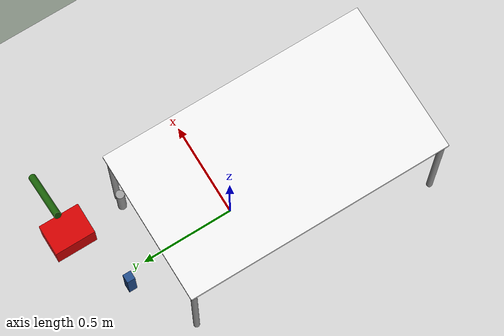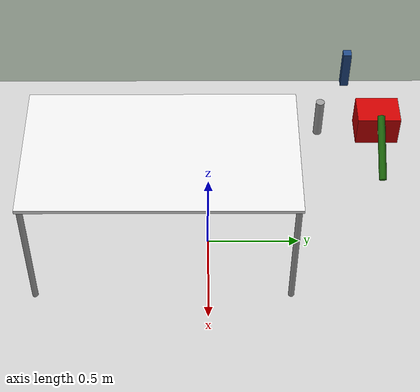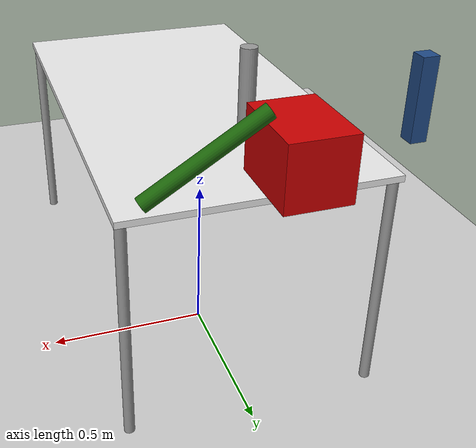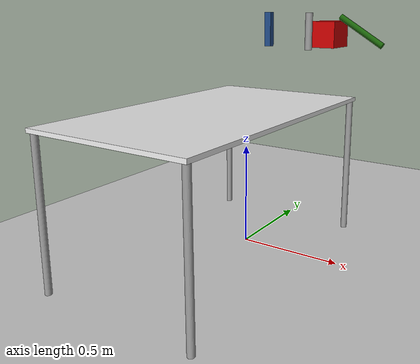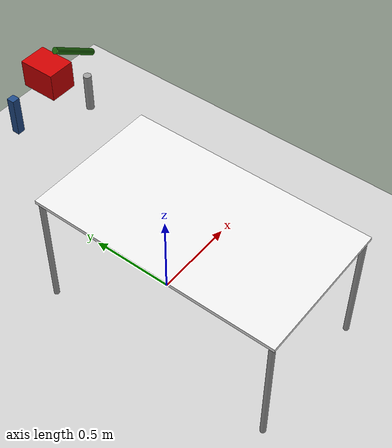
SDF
<sdf version="1.7">
 <world name="default">
  <plugin name="ros_link_attacher_plugin" filename="libgazebo_ros_link_attacher.so"/>
  <light name="sun" type="directional">
   <pose>0 0 10 0 -0 0</pose>
   <diffuse>0.8 0.8 0.8 1</diffuse>
   <specular>0.2 0.2 0.2 1</specular>
   <attenuation>
    <range>1000</range>
    <constant>0.9</constant>
    <linear>0.01</linear>
    <quadratic>0.001</quadratic>
   </attenuation>
   <direction>-0.5 0.1 -0.9</direction>
   <spot><inner_angle>0</inner_angle><outer_angle>0</outer_angle><falloff>0</falloff></spot>
  </light>
  <gravity>0 0 -9.8</gravity>
  <magnetic_field>6e-06 2.3e-05 -4.2e-05</magnetic_field>
  <atmosphere type="adiabatic"/>
  <physics type="ode">
   <max_step_size>0.001</max_step_size>
   <real_time_factor>1</real_time_factor>
   <real_time_update_rate>1000</real_time_update_rate>
  </physics>
  <scene><ambient>0.4 0.4 0.4 1</ambient><background>0.7 0.7 0.7 1</background><shadows>1</shadows></scene>
  <spherical_coordinates>
   <surface_model>EARTH_WGS84</surface_model>
   <latitude_deg>0</latitude_deg>
   <longitude_deg>0</longitude_deg>
   <elevation>0</elevation>
   <heading_deg>0</heading_deg>
  </spherical_coordinates>
  <model name="ground_plane">
   <static>1</static>
   <link name="link">
    <collision name="collision">
     <geometry><plane><normal>0 0 1</normal><size>100 100</size></plane></geometry>
     <surface><friction><ode><mu>100</mu><mu2>50</mu2></ode></friction></surface>
    </collision>
    <visual name="visual">
     <cast_shadows>0</cast_shadows>
     <geometry><plane><normal>0 0 1</normal><size>100 100</size></plane></geometry>
     <material>
      <script><uri>file://media/materials/scripts/gazebo.material</uri><name>Gazebo/Grey</name></script>
     </material>
    </visual>
   </link>
   <pose>-2.26503 -1.2302 0 0 -0 0</pose>
  </model>
  <model name="TableAgr">
   <link name="link2">
    <inertial>
     <inertia><ixx>0</ixx><ixy>0</ixy><ixz>0</ixz><iyy>0</iyy><iyz>0</iyz><izz>0</izz></inertia>
     <mass>0</mass>
    </inertial>
    <pose>-0.25 -0 0 0 -0 0</pose>
    <visual name="visual1">
     <pose>0 0 0.71 0 -0 0</pose>
     <geometry><box><size>1.40612 0.8 0.019708</size></box></geometry>
     <material>
      <script><uri>file://media/materials/scripts/gazebo.material</uri><name>Gazebo/White</name></script>
      <shader type="pixel"><normal_map>__default__</normal_map></shader>
      <ambient>0.9 0.9 0.9 1</ambient>
      <diffuse>1 1 1 1</diffuse>
      <specular>0.2 0.2 0.2 1</specular>
      <emissive>0 0 0 1</emissive>
     </material>
    </visual>
    <visual name="front_left_leg">
     <pose>0.68 0.38 0.35 0 -0 0</pose>
     <geometry><cylinder><radius>0.0158435</radius><length>0.7</length></cylinder></geometry>
     <material>
      <script><uri>file://media/materials/scripts/gazebo.material</uri><name>Gazebo/Grey</name></script>
      <shader type="pixel"><normal_map>__default__</normal_map></shader>
      <ambient>0.3 0.3 0.3 1</ambient>
      <diffuse>0.7 0.7 0.7 1</diffuse>
      <specular>0.01 0.01 0.01 1</specular>
      <emissive>0 0 0 1</emissive>
     </material>
    </visual>
    <visual name="back_right_leg">
     <pose>-0.68 -0.38 0.35 0 -0 0</pose>
     <geometry><cylinder><radius>0.0158435</radius><length>0.7</length></cylinder></geometry>
     <material>
      <script><uri>file://media/materials/scripts/gazebo.material</uri><name>Gazebo/Grey</name></script>
      <shader type="pixel"><normal_map>__default__</normal_map></shader>
      <ambient>0.3 0.3 0.3 1</ambient>
      <diffuse>0.7 0.7 0.7 1</diffuse>
      <specular>0.01 0.01 0.01 1</specular>
      <emissive>0 0 0 1</emissive>
     </material>
    </visual>
    <visual name="front_right_leg">
     <pose>0.68 -0.38 0.35 0 -0 0</pose>
     <geometry><cylinder><radius>0.0158435</radius><length>0.7</length></cylinder></geometry>
     <material>
      <script><uri>file://media/materials/scripts/gazebo.material</uri><name>Gazebo/Grey</name></script>
      <shader type="pixel"><normal_map>__default__</normal_map></shader>
      <ambient>0.3 0.3 0.3 1</ambient>
      <diffuse>0.7 0.7 0.7 1</diffuse>
      <specular>0.01 0.01 0.01 1</specular>
      <emissive>0 0 0 1</emissive>
     </material>
    </visual>
    <visual name="back_left_leg">
     <pose>-0.68 0.38 0.35 0 -0 0</pose>
     <geometry><cylinder><radius>0.0158435</radius><length>0.7</length></cylinder></geometry>
     <material>
      <script><uri>file://media/materials/scripts/gazebo.material</uri><name>Gazebo/Grey</name></script>
      <shader type="pixel"><normal_map>__default__</normal_map></shader>
      <ambient>0.3 0.3 0.3 1</ambient>
      <diffuse>0.7 0.7 0.7 1</diffuse>
      <specular>0.01 0.01 0.01 1</specular>
      <emissive>0 0 0 1</emissive>
     </material>
    </visual>
    <collision name="front_right_leg">
     <pose>0.68 -0.38 0.35 0 -0 0</pose>
     <geometry><cylinder><radius>0.015843</radius><length>0.7</length></cylinder></geometry>
     <surface>
      <friction>
       <ode><mu>1</mu><mu2>1</mu2><fdir1>0 0 0</fdir1><slip1>0</slip1><slip2>0</slip2></ode>
       <torsional>
        <coefficient>1</coefficient>
        <patch_radius>0</patch_radius>
        <surface_radius>0</surface_radius>
        <use_patch_radius>1</use_patch_radius>
        <ode><slip>0</slip></ode>
       </torsional>
      </friction>
      <bounce><restitution_coefficient>0</restitution_coefficient><threshold>1e+06</threshold></bounce>
      <contact>
       <collide_without_contact>0</collide_without_contact>
       <collide_without_contact_bitmask>1</collide_without_contact_bitmask>
       <collide_bitmask>1</collide_bitmask>
       <ode>
        <soft_cfm>0</soft_cfm>
        <soft_erp>0.2</soft_erp>
        <kp>1e+13</kp>
        <kd>1</kd>
        <max_vel>0.01</max_vel>
        <min_depth>0</min_depth>
       </ode>
       <bullet>
        <split_impulse>1</split_impulse>
        <split_impulse_penetration_threshold>-0.01</split_impulse_penetration_threshold>
        <soft_cfm>0</soft_cfm>
        <soft_erp>0.2</soft_erp>
        <kp>1e+13</kp>
        <kd>1</kd>
       </bullet>
      </contact>
     </surface>
    </collision>
    <collision name="surface">
     <pose>0 0 0.71 0 -0 0</pose>
     <geometry><box><size>1.40612 0.8 0.019708</size></box></geometry>
     <surface>
      <friction>
       <ode><mu>0.6</mu><mu2>0.6</mu2><fdir1>0 0 0</fdir1><slip1>0</slip1><slip2>0</slip2></ode>
       <torsional>
        <coefficient>1</coefficient>
        <patch_radius>0</patch_radius>
        <surface_radius>0</surface_radius>
        <use_patch_radius>1</use_patch_radius>
        <ode><slip>0</slip></ode>
       </torsional>
      </friction>
      <bounce><restitution_coefficient>0</restitution_coefficient><threshold>1e+06</threshold></bounce>
      <contact>
       <collide_without_contact>0</collide_without_contact>
       <collide_without_contact_bitmask>1</collide_without_contact_bitmask>
       <collide_bitmask>1</collide_bitmask>
       <ode>
        <soft_cfm>0</soft_cfm>
        <soft_erp>0.2</soft_erp>
        <kp>1e+13</kp>
        <kd>1</kd>
        <max_vel>0.01</max_vel>
        <min_depth>0</min_depth>
       </ode>
       <bullet>
        <split_impulse>1</split_impulse>
        <split_impulse_penetration_threshold>-0.01</split_impulse_penetration_threshold>
        <soft_cfm>0</soft_cfm>
        <soft_erp>0.2</soft_erp>
        <kp>1e+13</kp>
        <kd>1</kd>
       </bullet>
      </contact>
     </surface>
    </collision>
    <collision name="front_left_leg">
     <pose>0.68 0.38 0.35 0 -0 0</pose>
     <geometry><cylinder><radius>0.015843</radius><length>0.7</length></cylinder></geometry>
     <surface>
      <friction>
       <ode><mu>1</mu><mu2>1</mu2><fdir1>0 0 0</fdir1><slip1>0</slip1><slip2>0</slip2></ode>
       <torsional>
        <coefficient>1</coefficient>
        <patch_radius>0</patch_radius>
        <surface_radius>0</surface_radius>
        <use_patch_radius>1</use_patch_radius>
        <ode><slip>0</slip></ode>
       </torsional>
      </friction>
      <bounce><restitution_coefficient>0</restitution_coefficient><threshold>1e+06</threshold></bounce>
      <contact>
       <collide_without_contact>0</collide_without_contact>
       <collide_without_contact_bitmask>1</collide_without_contact_bitmask>
       <collide_bitmask>1</collide_bitmask>
       <ode>
        <soft_cfm>0</soft_cfm>
        <soft_erp>0.2</soft_erp>
        <kp>1e+13</kp>
        <kd>1</kd>
        <max_vel>0.01</max_vel>
        <min_depth>0</min_depth>
       </ode>
       <bullet>
        <split_impulse>1</split_impulse>
        <split_impulse_penetration_threshold>-0.01</split_impulse_penetration_threshold>
        <soft_cfm>0</soft_cfm>
        <soft_erp>0.2</soft_erp>
        <kp>1e+13</kp>
        <kd>1</kd>
       </bullet>
      </contact>
     </surface>
    </collision>
    <collision name="back_left_leg">
     <pose>-0.68 0.38 0.35 0 -0 0</pose>
     <geometry><cylinder><radius>0.015843</radius><length>0.7</length></cylinder></geometry>
     <surface>
      <friction>
       <ode><mu>1</mu><mu2>1</mu2><fdir1>0 0 0</fdir1><slip1>0</slip1><slip2>0</slip2></ode>
       <torsional>
        <coefficient>1</coefficient>
        <patch_radius>0</patch_radius>
        <surface_radius>0</surface_radius>
        <use_patch_radius>1</use_patch_radius>
        <ode><slip>0</slip></ode>
       </torsional>
      </friction>
      <bounce><restitution_coefficient>0</restitution_coefficient><threshold>1e+06</threshold></bounce>
      <contact>
       <collide_without_contact>0</collide_without_contact>
       <collide_without_contact_bitmask>1</collide_without_contact_bitmask>
       <collide_bitmask>1</collide_bitmask>
       <ode>
        <soft_cfm>0</soft_cfm>
        <soft_erp>0.2</soft_erp>
        <kp>1e+13</kp>
        <kd>1</kd>
        <max_vel>0.01</max_vel>
        <min_depth>0</min_depth>
       </ode>
       <bullet>
        <split_impulse>1</split_impulse>
        <split_impulse_penetration_threshold>-0.01</split_impulse_penetration_threshold>
        <soft_cfm>0</soft_cfm>
        <soft_erp>0.2</soft_erp>
        <kp>1e+13</kp>
        <kd>1</kd>
       </bullet>
      </contact>
     </surface>
    </collision>
    <collision name="back_right_leg">
     <pose>-0.68 -0.38 0.35 0 -0 0</pose>
     <geometry><cylinder><radius>0.015843</radius><length>0.7</length></cylinder></geometry>
     <surface>
      <friction>
       <ode><mu>1</mu><mu2>1</mu2><fdir1>0 0 0</fdir1><slip1>0</slip1><slip2>0</slip2></ode>
       <torsional>
        <coefficient>1</coefficient>
        <patch_radius>0</patch_radius>
        <surface_radius>0</surface_radius>
        <use_patch_radius>1</use_patch_radius>
        <ode><slip>0</slip></ode>
       </torsional>
      </friction>
      <bounce><restitution_coefficient>0</restitution_coefficient><threshold>1e+06</threshold></bounce>
      <contact>
       <collide_without_contact>0</collide_without_contact>
       <collide_without_contact_bitmask>1</collide_without_contact_bitmask>
       <collide_bitmask>1</collide_bitmask>
       <ode>
        <soft_cfm>0</soft_cfm>
        <soft_erp>0.2</soft_erp>
        <kp>1e+13</kp>
        <kd>1</kd>
        <max_vel>0.01</max_vel>
        <min_depth>0</min_depth>
       </ode>
       <bullet>
        <split_impulse>1</split_impulse>
        <split_impulse_penetration_threshold>-0.01</split_impulse_penetration_threshold>
        <soft_cfm>0</soft_cfm>
        <soft_erp>0.2</soft_erp>
        <kp>1e+13</kp>
        <kd>1</kd>
       </bullet>
      </contact>
     </surface>
    </collision>
   </link>
   <static>1</static>
   <pose>-0.022089 0.010177 0 0 -0 1.57</pose>
  </model>
  <model name="BoxAgrObs1">
   <link name="link_4">
    <inertial>
     <mass>0.00267937</mass>
     <inertia>
      <ixx>1.012e-05</ixx>
      <ixy>0</ixy>
      <ixz>0</ixz>
      <iyy>6.7e-06</iyy>
      <iyz>0</iyz>
      <izz>1.12e-05</izz>
     </inertia>
    </inertial>
    <visual name="visual">
     <geometry><box><size>0.15 0.2 0.15</size></box></geometry>
     <material>
      <lighting>1</lighting>
      <script><uri>file://media/materials/scripts/gazebo.material</uri><name>Gazebo/Grey</name></script>
      <shader type="pixel"><normal_map>__default__</normal_map></shader>
      <ambient>0.8 0 0 1</ambient>
      <diffuse>0.7 0.7 0.7 1</diffuse>
      <specular>0.01 0.01 0.01 1</specular>
      <emissive>0 0 0 1</emissive>
     </material>
    </visual>
    <collision name="collision">
     <geometry><box><size>0.15 0.2 0.15</size></box></geometry>
     <surface>
      <friction>
       <ode><mu>1</mu><mu2>1</mu2><fdir1>0 0 0</fdir1><slip1>0</slip1><slip2>0</slip2></ode>
       <torsional>
        <coefficient>1</coefficient>
        <patch_radius>0</patch_radius>
        <surface_radius>0</surface_radius>
        <use_patch_radius>1</use_patch_radius>
        <ode><slip>0</slip></ode>
       </torsional>
      </friction>
      <bounce><restitution_coefficient>0</restitution_coefficient><threshold>1e+06</threshold></bounce>
      <contact>
       <collide_without_contact>0</collide_without_contact>
       <collide_without_contact_bitmask>1</collide_without_contact_bitmask>
       <collide_bitmask>1</collide_bitmask>
       <ode>
        <soft_cfm>0</soft_cfm>
        <soft_erp>0.2</soft_erp>
        <kp>1e+13</kp>
        <kd>1</kd>
        <max_vel>0.01</max_vel>
        <min_depth>0</min_depth>
       </ode>
       <bullet>
        <split_impulse>1</split_impulse>
        <split_impulse_penetration_threshold>-0.01</split_impulse_penetration_threshold>
        <soft_cfm>0</soft_cfm>
        <soft_erp>0.2</soft_erp>
        <kp>1e+13</kp>
        <kd>1</kd>
       </bullet>
      </contact>
     </surface>
    </collision>
   </link>
   <static>0</static>
   <pose>0.069921 0.799992 1.023 2e-06 -0 0.000131</pose>
  </model>
  <model name="CylinderAgr2">
   <link name="link_5">
    <inertial>
     <mass>0.00037636</mass>
     <inertia><ixx>2.88e-06</ixx><ixy>0</ixy><ixz>0</ixz><iyy>2.88e-06</iyy><iyz>0</iyz><izz>6e-08</izz></inertia>
    </inertial>
    <pose>0 0 0 0 -1.01599 0</pose>
    <visual name="visual">
     <geometry><cylinder><radius>0.0177698</radius><length>0.301258</length></cylinder></geometry>
     <material>
      <lighting>1</lighting>
      <script><uri>file://media/materials/scripts/gazebo.material</uri><name>Gazebo/Grey</name></script>
      <shader type="pixel"><normal_map>__default__</normal_map></shader>
      <ambient>0.102 0.38 0.035 1</ambient>
      <diffuse>0.7 0.7 0.7 1</diffuse>
      <specular>0.01 0.01 0.01 1</specular>
      <emissive>0 0 0 1</emissive>
     </material>
    </visual>
    <collision name="collision">
     <geometry><cylinder><radius>0.01777</radius><length>0.301258</length></cylinder></geometry>
     <surface>
      <friction>
       <ode><mu>1</mu><mu2>1</mu2><fdir1>0 0 0</fdir1><slip1>0</slip1><slip2>0</slip2></ode>
       <torsional>
        <coefficient>1</coefficient>
        <patch_radius>0</patch_radius>
        <surface_radius>0</surface_radius>
        <use_patch_radius>1</use_patch_radius>
        <ode><slip>0</slip></ode>
       </torsional>
      </friction>
      <bounce><restitution_coefficient>0</restitution_coefficient><threshold>1e+06</threshold></bounce>
      <contact>
       <collide_without_contact>0</collide_without_contact>
       <collide_without_contact_bitmask>1</collide_without_contact_bitmask>
       <collide_bitmask>1</collide_bitmask>
       <ode>
        <soft_cfm>0</soft_cfm>
        <soft_erp>0.2</soft_erp>
        <kp>1e+13</kp>
        <kd>1</kd>
        <max_vel>0.01</max_vel>
        <min_depth>0</min_depth>
       </ode>
       <bullet>
        <split_impulse>1</split_impulse>
        <split_impulse_penetration_threshold>-0.01</split_impulse_penetration_threshold>
        <soft_cfm>0</soft_cfm>
        <soft_erp>0.2</soft_erp>
        <kp>1e+13</kp>
        <kd>1</kd>
       </bullet>
      </contact>
     </surface>
    </collision>
   </link>
   <static>0</static>
   <pose>0.266614 0.804093 1.0429 -0.054723 0.004703 0.033969</pose>
  </model>
  <model name="CylinderAgr1">
   <link name="link_1">
    <inertial>
     <mass>0.00188198</mass>
     <inertia>
      <ixx>0.00015705</ixx>
      <ixy>0</ixy>
      <ixz>0</ixz>
      <iyy>0.00015705</iyy>
      <iyz>0</iyz>
      <izz>4.4e-07</izz>
     </inertia>
    </inertial>
    <visual name="visual">
     <geometry><cylinder><radius>0.02</radius><length>0.2</length></cylinder></geometry>
     <material>
      <lighting>1</lighting>
      <script><uri>file://media/materials/scripts/gazebo.material</uri><name>Gazebo/Grey</name></script>
      <shader type="pixel"><normal_map>__default__</normal_map></shader>
      <ambient>0.3 0.3 0.3 1</ambient>
      <diffuse>0.7 0.7 0.7 1</diffuse>
      <specular>0.01 0.01 0.01 1</specular>
      <emissive>0 0 0 1</emissive>
     </material>
    </visual>
    <collision name="collision">
     <geometry><cylinder><radius>0.02</radius><length>0.2</length></cylinder></geometry>
     <surface>
      <friction>
       <ode><mu>1</mu><mu2>1</mu2><fdir1>0 0 0</fdir1><slip1>0</slip1><slip2>0</slip2></ode>
       <torsional>
        <coefficient>1</coefficient>
        <patch_radius>0</patch_radius>
        <surface_radius>0</surface_radius>
        <use_patch_radius>1</use_patch_radius>
        <ode><slip>0</slip></ode>
       </torsional>
      </friction>
      <bounce><restitution_coefficient>0</restitution_coefficient><threshold>1e+06</threshold></bounce>
      <contact>
       <collide_without_contact>0</collide_without_contact>
       <collide_without_contact_bitmask>1</collide_without_contact_bitmask>
       <collide_bitmask>1</collide_bitmask>
       <ode>
        <soft_cfm>0</soft_cfm>
        <soft_erp>0.2</soft_erp>
        <kp>1e+13</kp>
        <kd>1</kd>
        <max_vel>0.01</max_vel>
        <min_depth>0</min_depth>
       </ode>
       <bullet>
        <split_impulse>1</split_impulse>
        <split_impulse_penetration_threshold>-0.01</split_impulse_penetration_threshold>
        <soft_cfm>0</soft_cfm>
        <soft_erp>0.2</soft_erp>
        <kp>1e+13</kp>
        <kd>1</kd>
       </bullet>
      </contact>
     </surface>
    </collision>
   </link>
   <static>0</static>
   <pose>0.070921 0.522611 1.04799 -0.000117 3e-06 -0.006028</pose>
  </model>
  <model name="BoxAgr1">
   <link name="link_3">
    <inertial>
     <mass>0.00050374</mass>
     <inertia>
      <ixx>1.29e-06</ixx>
      <ixy>0</ixy>
      <ixz>0</ixz>
      <iyy>1.26e-06</iyy>
      <iyz>0</iyz>
      <izz>2.6e-07</izz>
     </inertia>
    </inertial>
    <visual name="visual">
     <geometry><box><size>0.04 0.04 0.2</size></box></geometry>
     <material>
      <lighting>1</lighting>
      <script><uri>file://media/materials/scripts/gazebo.material</uri><name>Gazebo/Grey</name></script>
      <shader type="pixel"><normal_map>__default__</normal_map></shader>
      <ambient>0.125 0.29 0.529 1</ambient>
      <diffuse>0.7 0.7 0.7 1</diffuse>
      <specular>0.01 0.01 0.01 1</specular>
      <emissive>0 0 0 1</emissive>
     </material>
    </visual>
    <collision name="collision">
     <geometry><box><size>0.04 0.04 0.2</size></box></geometry>
     <surface>
      <friction>
       <ode><mu>1</mu><mu2>1</mu2><fdir1>0 0 0</fdir1><slip1>0</slip1><slip2>0</slip2></ode>
       <torsional>
        <coefficient>1</coefficient>
        <patch_radius>0</patch_radius>
        <surface_radius>0</surface_radius>
        <use_patch_radius>1</use_patch_radius>
        <ode><slip>0</slip></ode>
       </torsional>
      </friction>
      <bounce><restitution_coefficient>0</restitution_coefficient><threshold>1e+06</threshold></bounce>
      <contact>
       <collide_without_contact>0</collide_without_contact>
       <collide_without_contact_bitmask>1</collide_without_contact_bitmask>
       <collide_bitmask>1</collide_bitmask>
       <ode>
        <soft_cfm>0</soft_cfm>
        <soft_erp>0.2</soft_erp>
        <kp>1e+13</kp>
        <kd>1</kd>
        <max_vel>0.01</max_vel>
        <min_depth>0</min_depth>
       </ode>
       <bullet>
        <split_impulse>1</split_impulse>
        <split_impulse_penetration_threshold>-0.01</split_impulse_penetration_threshold>
        <soft_cfm>0</soft_cfm>
        <soft_erp>0.2</soft_erp>
        <kp>1e+13</kp>
        <kd>1</kd>
       </bullet>
      </contact>
     </surface>
    </collision>
   </link>
   <static>0</static>
   <pose>-0.269992 0.679985 1.048 0.000143 8.8e-05 0.000108</pose>
  </model>
 </world>
</sdf>
